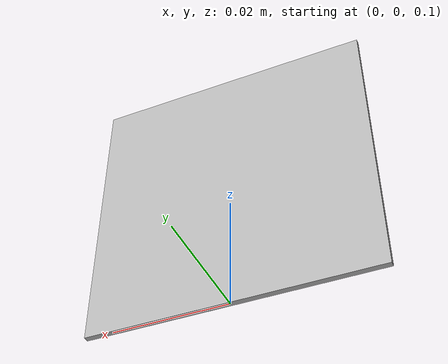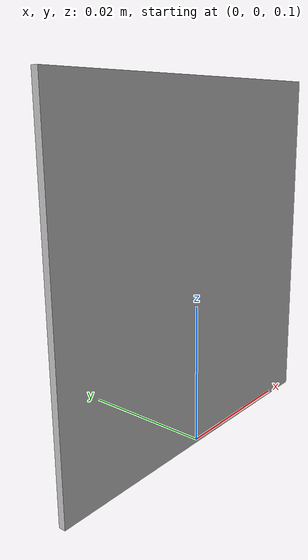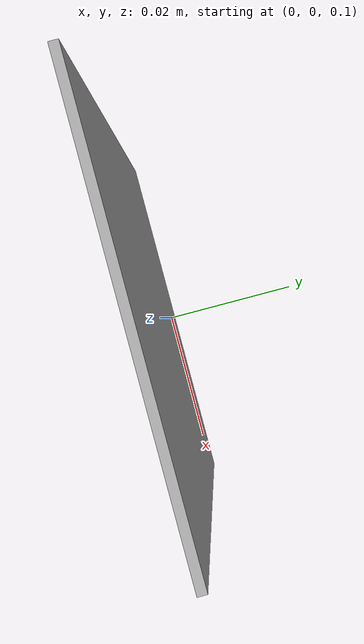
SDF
<?xml version="1.0" ?>
<sdf version="1.6">
  <model name="ar_marker">
    <pose>0 0 0.125 0 0 0</pose>
    <link name="box">
      <pose>0 0 0 0 0 0</pose>
      <collision name="collision">
        <geometry>
          <box>
            <size>0.05 0.001 0.05</size>
          </box>
        </geometry>
      </collision>
      <visual name="visual">
        <geometry>
          <box>
            <size>0.05 0.001 0.05</size>
          </box>
        </geometry>
        <material>
          <script>
            <uri>model://turtlebot3_rooms/ar_marker/materials/scripts</uri>
            <uri>model://turtlebot3_rooms/ar_marker/materials/textures</uri>
            <name>ar_marker</name>
          </script>
        </material>
      </visual>
    </link>
  </model>
</sdf>
